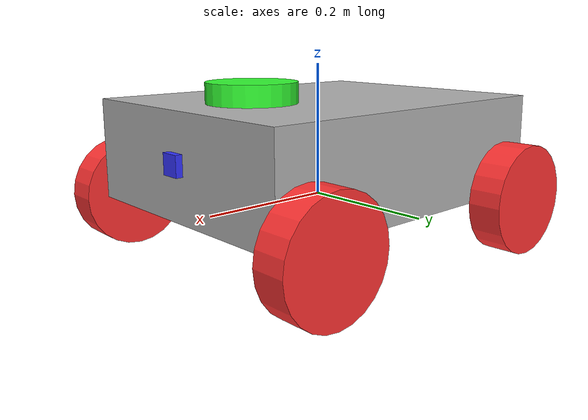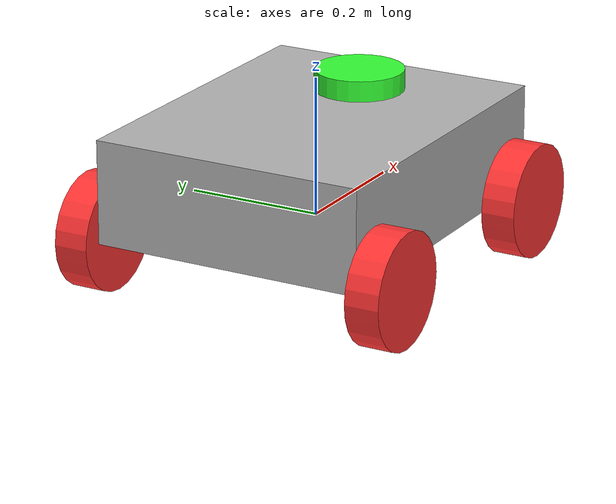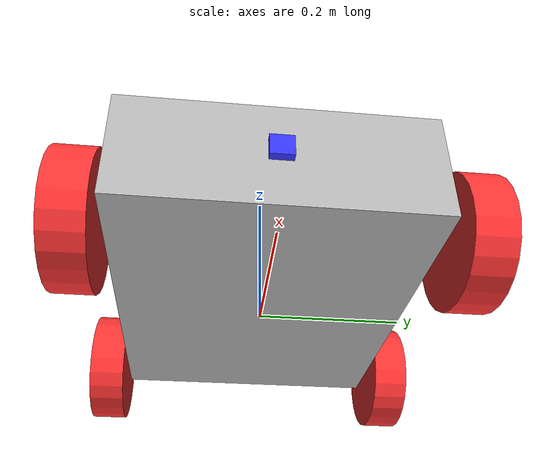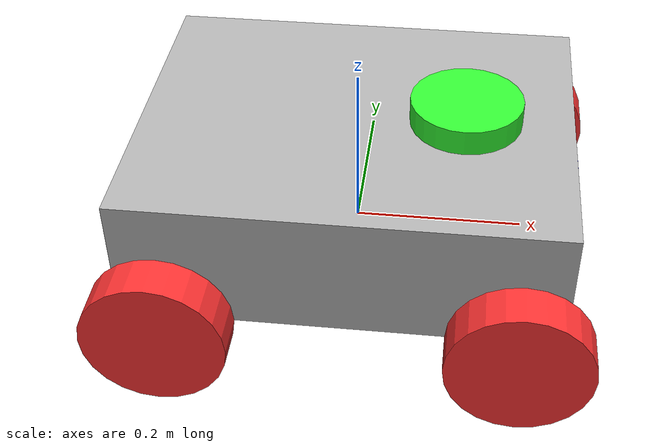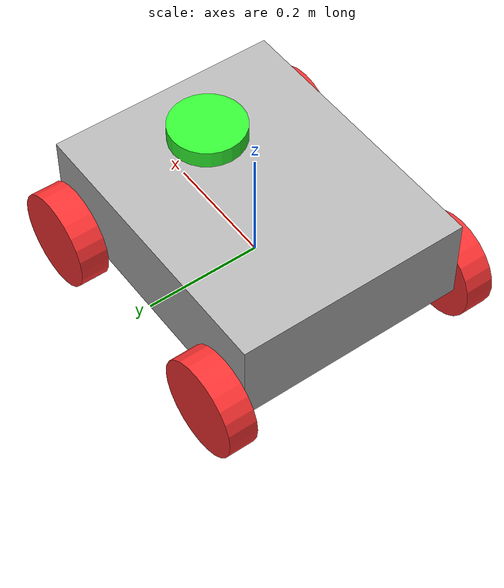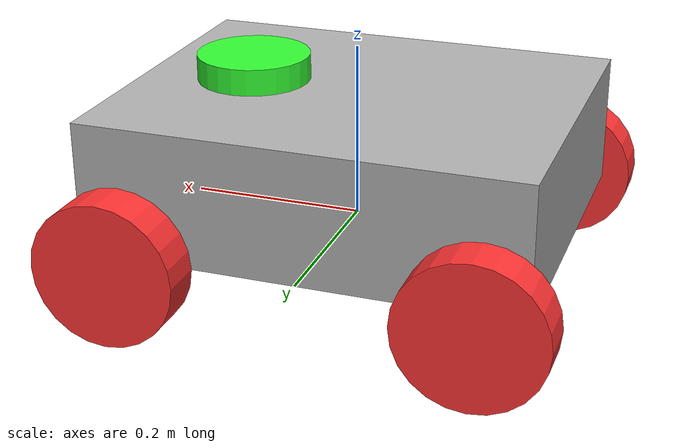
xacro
<?xml version="1.0"?>
<robot xmlns:xacro="http://www.ros.org/wiki/xacro" name="robot">

    <xacro:include filename="inertial_macros.xacro"/>
    <xacro:include filename="robot_core_4Wheels.xacro"/>
    <xacro:include filename="gazebo_skid_steering.xacro"/>
    <xacro:include filename="lidar.xacro"/>
    <xacro:include filename="camera.xacro"/>

    <!-- how to make an arg to specify whether to use roscontrol or gzebocontrol -->

</robot>

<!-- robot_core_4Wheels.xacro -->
<robot xmlns:xacro="http://www.ros.org/wiki/xacro" name="robot_core_4Wheels">

    <!--COLORS-->
    <material name="white">
        <color rgba="1 1 1 1"/>
    </material>

    <material name="black">
        <color rgba="0 0 0 1"/>
    </material>

    <material name="LightGrey">
        <color rgba="0.7 0.7 0.7 1.0"/>
    </material>

    <material name="blue">
        <color rgba="0.2 0.2 1 1"/>
    </material>

    <material name="green">
        <color rgba="0.2 1 0.2 1"/>
    </material>

    <material name="red">
        <color rgba="1 0.2 0.2 1"/>
    </material>

    <!--DESIGN-->
    <xacro:property name="chassis_x" value="0.5"/>
    <xacro:property name="chassis_y" value="0.4"/>
    <xacro:property name="chassis_z" value="0.15"/>
    <xacro:property name="wheel_radius" value="0.08255"/>
    <xacro:property name="wheel_length" value="0.05"/>
    <xacro:property name="chassis_mass" value="10"/>
    <xacro:property name="wheel_mass" value="3.0"/>s
    <xacro:property name="back_wheel_origin_x" value="-0.2"/>
    <xacro:property name="front_wheel_origin_x" value="0.2"/>
    <xacro:property name="wheel_origin_y" value="0.225"/> <!--chassis_y/2 + wheel_lenth/2 + 0.002 clearance-->

    <!--base-->
    <link name="base_link"></link>

    <joint name="chassis_joint" type="fixed">
        <parent link="base_link"/>
        <child link="chassis"/>
        <origin xyz="0.0 0.0 0.0" rpy="0.0 0.0 0.0"/>
    </joint>

    <link name="chassis">
        <visual>
            <geometry>
                <box size="${chassis_x} ${chassis_y} ${chassis_z}" />
            </geometry>
            <material name="LightGrey"/>
            <origin xyz="0.0 0.0 ${chassis_z/2}" rpy="0.0 0.0 0.0"/>
        </visual>
        <collision>
            <geometry>
                <box size="${chassis_x} ${chassis_y} ${chassis_z}" />
            </geometry>
        </collision>
        <xacro:inertial_box mass="${chassis_mass}" x="${chassis_x/2}" y="${chassis_y}" z="${chassis_z}">
            <origin xyz="0.0 0.0 ${chassis_z/2}" rpy="0.0 0.0 0.0"/>
        </xacro:inertial_box>
    </link>

    <gazebo reference="chassis">
        <material>Gazebo/White</material>
    </gazebo>

    <!--left wheel back-->
    <joint name="left_wheel_back_joint" type="continuous">
        <origin xyz="${back_wheel_origin_x} ${wheel_origin_y} 0.0" rpy="${-pi/2} ${-pi} 0.0"/>
        <parent link="chassis"/>
        <child link="left_wheel_back"/>
        <axis xyz="0.0 0.0 1.0"/>
    </joint>

    <link name="left_wheel_back">
        <visual>
            <geometry>
                <cylinder radius="${wheel_radius}" length="${wheel_length}"/>
            </geometry>
            <material name="red"/>
        </visual>
        <collision>
            <geometry>
                <sphere radius="${wheel_radius}"/>
            </geometry>
        </collision>
        <xacro:inertial_cylinder mass="${wheel_mass}" length="${wheel_length}" radius="${wheel_radius}">
            <origin xyz="${back_wheel_origin_x} ${wheel_origin_y} 0.0" rpy="${-pi/2} 0.0 0.0"/>
        </xacro:inertial_cylinder>
    </link>

    <gazebo reference="left_wheel_back">
        <material>Gazebo/Black</material>
    </gazebo>

     <!--right wheel back-->
    <joint name="right_wheel_back_joint" type="continuous">
        <origin xyz="${back_wheel_origin_x} ${-wheel_origin_y} 0.0" rpy="${pi/2} 0.0 0.0"/>
        <parent link="chassis"/>
        <child link="right_wheel_back"/>
        <axis xyz="0.0 0.0 -1.0"/>
    </joint>

    <link name="right_wheel_back">
        <visual>
            <geometry>
                <cylinder radius="${wheel_radius}" length="${wheel_length}"/>
            </geometry>
            <material name="red"/>
        </visual>
        <collision>
            <geometry>
                <sphere radius="${wheel_radius}"/>
            </geometry>
        </collision>
        <xacro:inertial_cylinder mass="${wheel_mass}" length="${wheel_length}" radius="${wheel_radius}">
            <origin xyz="${back_wheel_origin_x} ${-wheel_origin_y} 0.0" rpy="${pi/2} 0.0 0.0"/>
        </xacro:inertial_cylinder>
    </link>

    <gazebo reference="right_wheel_back">
        <material>Gazebo/Black</material>
    </gazebo>

    <!--left wheel front-->
    <joint name="left_wheel_front_joint" type="continuous">
        <origin xyz="${front_wheel_origin_x} ${wheel_origin_y} 0.0" rpy="${-pi/2} ${-pi} 0.0"/>
        <parent link="chassis"/>
        <child link="left_wheel_front"/>
        <axis xyz="0.0 0.0 1.0"/>
    </joint>

    <link name="left_wheel_front">
        <visual>
            <geometry>
                <cylinder radius="${wheel_radius}" length="${wheel_length}"/>
            </geometry>
            <material name="red"/>
        </visual>
        <collision>
            <geometry>
                <sphere radius="${wheel_radius}"/>
            </geometry>
        </collision>
        <xacro:inertial_cylinder mass="${wheel_mass}" length="${wheel_length}" radius="${wheel_radius}">
            <origin xyz="${front_wheel_origin_x} ${wheel_origin_y} 0.0" rpy="${-pi/2} 0.0 0.0"/>
        </xacro:inertial_cylinder>
    </link>

    <gazebo reference="left_wheel_front">
        <material>Gazebo/Black</material>
    </gazebo>

     <!--right wheel front-->
    <joint name="right_wheel_front_joint" type="continuous">
        <origin xyz="${front_wheel_origin_x} ${-wheel_origin_y} 0.0" rpy="${pi/2} 0.0 0.0"/>
        <parent link="chassis"/>
        <child link="right_wheel_front"/>
        <axis xyz="0.0 0.0 -1.0"/>
    </joint>

    <link name="right_wheel_front">
        <visual>
            <geometry>
                <cylinder radius="${wheel_radius}" length="${wheel_length}"/>
            </geometry>
            <material name="red"/>
        </visual>
        <collision>
            <geometry>
                <sphere radius="${wheel_radius}"/>
            </geometry>
        </collision>
        <xacro:inertial_cylinder mass="${wheel_mass}" length="${wheel_length}" radius="${wheel_radius}">
            <origin xyz="${-front_wheel_origin_x} ${-wheel_origin_y} 0.0" rpy="${pi/2} 0.0 0.0"/>
        </xacro:inertial_cylinder>
    </link>

    <gazebo reference="right_wheel_front">
        <material>Gazebo/Black</material>
    </gazebo>

</robot>

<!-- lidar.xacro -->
<robot xmlns:xacro="http://www.ros.org/wiki/xacro">

    <xacro:property name="lidar_origin_x" value="0.125"/>
    <xacro:property name="lidar_origin_z" value="0.165"/> <!--chassis_z + lidar_z/2-->
    <xacro:property name="lidar_radius" value="0.065"/> <!--measured-->
    <xacro:property name="lidar_length" value="0.03"/> <!--measured-->

    <joint name="lidar_joint" type="fixed">
        <origin xyz="${lidar_origin_x} 0.0 ${lidar_origin_z}" rpy="0.0 0.0 0.0"/>
        <parent link="chassis"/>
        <child link="lidar_link"/>
    </joint>

    <link name="lidar_link">
        <visual>
            <geometry>
                <cylinder radius="${lidar_radius}" length="${lidar_length}"/>
            </geometry>
            <material name="green"/>
        </visual>
        <collision>
            <geometry>
                <cylinder radius="${lidar_radius}" length="${lidar_length}"/>
            </geometry>
        </collision>
        <xacro:inertial_cylinder mass="0.01" length="0.03" radius="0.065">
            <origin xyz="${lidar_origin_x} 0.0 ${lidar_origin_z}" rpy="0.0 0.0 0.0"/>
        </xacro:inertial_cylinder>
    </link>

    <!-- plugin -->
    <gazebo reference="lidar_link">
        <material>Gazebo/Red</material>
        <sensor name="laser" type="ray">
            <pose> 0 0 0 0 0 0 </pose>
            <visualize>false</visualize>
            <always_on>1</always_on>
            <update_rate>100</update_rate>
            <ray>
                <scan>
                    <horizontal>
                        <samples>640</samples>
                        <resolution>1</resolution>
                        <min_angle>-3.14</min_angle>
                        <max_angle>3.14</max_angle>
                    </horizontal>
                </scan>
                <range>
                    <min>0.08</min>
                    <max>30.0</max>
                    <resolution>0.01</resolution>
                </range>
            </ray>

            <plugin name="laser_controller" filename="libgazebo_ros_laser.so">
                <topicName>/scan</topicName>
                <output_type>sensor_msgs/LaserScan</output_type>
                <frameName>lidar_link</frameName>
            </plugin>

        </sensor>
    </gazebo>

</robot>

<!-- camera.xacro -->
<robot xmlns:xacro="http://www.ros.org/wiki/xacro">

    <xacro:property name="camera_origin_x" value="0.255"/>
    <xacro:property name="camera_origin_z" value="0.08"/>
    <xacro:property name="camera_x" value="0.01"/>
    <xacro:property name="camera_y" value="0.03"/>
    <xacro:property name="camera_z" value="0.03"/>
    <xacro:property name="mass" value="0.001"/>

    <!--ROS standard coordinate sytem-->
    <joint name="camera_joint" type="fixed">
        <origin xyz="${camera_origin_x} 0.0 ${camera_origin_z}" rpy="0.0 0.0 0.0"/>
        <parent link="chassis"/>
        <child link="camera_link"/>
    </joint>

    <link name="camera_link">
        <visual>
            <geometry>
                <box size="${camera_x} ${camera_y} ${camera_z}"/>
            </geometry>
            <material name="blue"/>
        </visual>
        <collision>
            <geometry>
                <box size="${camera_x} ${camera_y} ${camera_z}"/>
            </geometry>
        </collision>
        <xacro:inertial_box mass="${mass}" x="${camera_x}" y="${camera_y}" z="${camera_z}">
            <origin xyz="${camera_origin_x} 0.0 ${camera_origin_z}" rpy="0.0 0.0 0.0"/>
        </xacro:inertial_box>
    </link>

    <!--the standard image coordinate-->
    <joint name="camera_optical_joint" type="fixed">
        <origin xyz="0.0 0.0 0.0" rpy="${-pi/2} 0.0 ${-pi/2}"/>
        <parent link="camera_link"/>
        <child link="camera_link_optical"/>
    </joint>

    <link name="camera_link_optical"></link>

    <gazebo reference="camera_link">
        <material>Gazebo/Blue</material>
        <sensor name="camera1" type="camera">
            <pose> 0 0 0 0 0 0 </pose>
            <visualize>true</visualize>
            <update_rate>30.0</update_rate>
            <camera name="head">
                <horizontal_fov>1.089</horizontal_fov> <!--horizontal field of view (zoom)-->
                <image>
                    <width>640</width> <!--pixels-->
                    <height>480</height> <!--pixels-->
                    <format>R8G8B8</format> <!--8 bits of R, 8 bits of G, 8 bits of B-->
                </image>
                <clip>
                    <near>0.05</near> <!--range of seeing of the camera-->
                    <far>8</far>
                </clip>
            </camera>

            <plugin name="camera_controller" filename="libgazebo_ros_camera.so">
                <frameName>camera_link_optical</frameName>
                <robotNamespace></robotNamespace>
                <alwaysOn>true</alwaysOn>
                <cameraName>camera</cameraName>
                <imageTopicName>image_raw</imageTopicName>
                <cameraInfoTopicName>camera_info</cameraInfoTopicName>
                <hackBaseline>0.07</hackBaseline>
                <distortionK1>0.0</distortionK1>
                <distortionK2>0.0</distortionK2>
                <distortionK3>0.0</distortionK3>
                <distortionT1>0.0</distortionT1>
                <distortionT2>0.0</distortionT2>
            </plugin>
    </sensor>
    </gazebo>

</robot>
